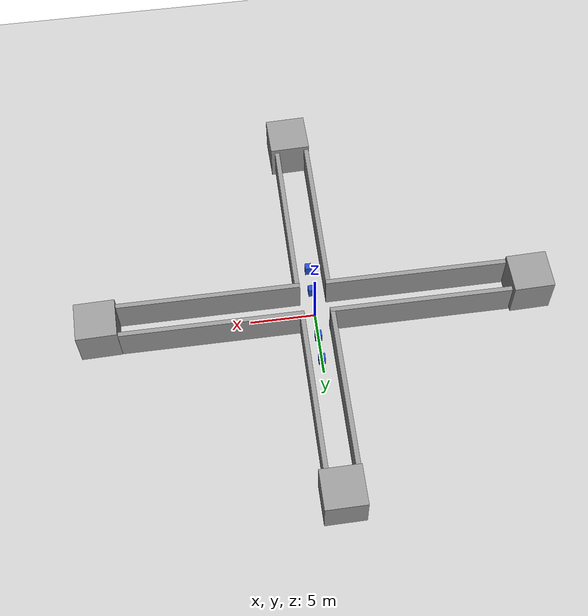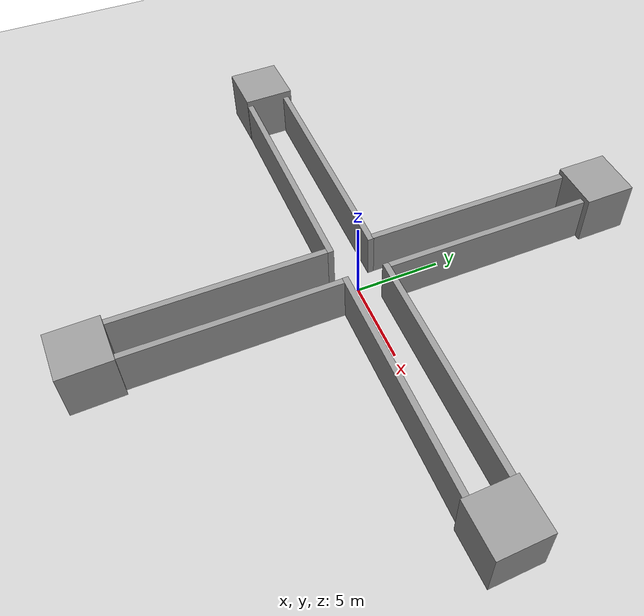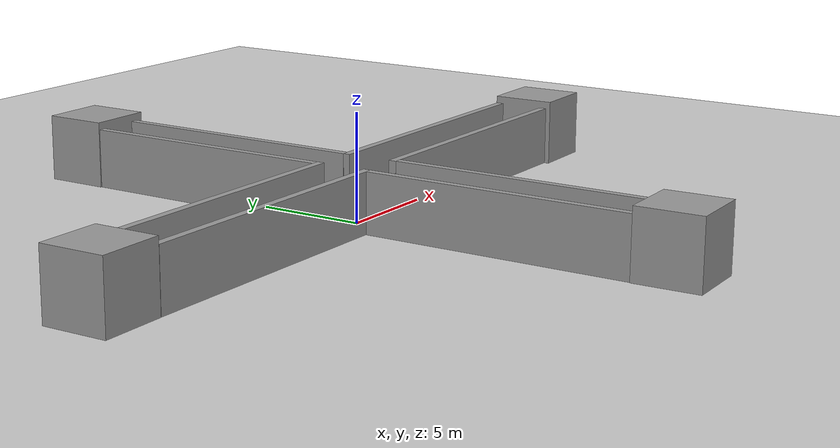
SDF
<sdf version="1.6">
 <world name="default">
  <include><uri>model://sun</uri></include>
  <include><uri>model://ground_plane</uri></include>
  <physics name="default_physics" default="0" type="ode">
   <max_step_size>0.01</max_step_size>
   <real_time_factor>1</real_time_factor>
   <real_time_update_rate>100</real_time_update_rate>
  </physics>
  <model name="my_obstacle_0">
   <pose>0 2 0.2 0 -0 0</pose>
   <link name="s_link">
    <inertial>
     <mass>1</mass>
     <inertia><ixx>1</ixx><ixy>0</ixy><ixz>0</ixz><iyy>1</iyy><iyz>0</iyz><izz>1</izz></inertia>
    </inertial>
    <collision name="collision"><geometry><box><size>.5 .5 1.2</size></box></geometry></collision>
    <visual name="visual">
     <geometry><box><size>.5 .5 1.2</size></box></geometry>
     <material>
      <script><name>Gazebo/Blue</name><uri>file://media/materials/scripts/gazebo.material</uri></script>
     </material>
    </visual>
    <kinematic>1</kinematic>
   </link>
  </model>
  <model name="my_obstacle_1">
   <pose>0 4 0.2 0 -0 0</pose>
   <link name="s_link">
    <inertial>
     <mass>1</mass>
     <inertia><ixx>1</ixx><ixy>0</ixy><ixz>0</ixz><iyy>1</iyy><iyz>0</iyz><izz>1</izz></inertia>
    </inertial>
    <collision name="collision"><geometry><box><size>.5 .5 1.2</size></box></geometry></collision>
    <visual name="visual">
     <geometry><box><size>.5 .5 1.2</size></box></geometry>
     <material>
      <script><name>Gazebo/Blue</name><uri>file://media/materials/scripts/gazebo.material</uri></script>
     </material>
    </visual>
    <kinematic>1</kinematic>
   </link>
  </model>
  <model name="my_obstacle_2">
   <pose>0 -2 0.2 0 -0 0</pose>
   <link name="s_link">
    <inertial>
     <mass>1</mass>
     <inertia><ixx>1</ixx><ixy>0</ixy><ixz>0</ixz><iyy>1</iyy><iyz>0</iyz><izz>1</izz></inertia>
    </inertial>
    <collision name="collision"><geometry><box><size>.5 .5 1.2</size></box></geometry></collision>
    <visual name="visual">
     <geometry><box><size>.5 .5 1.2</size></box></geometry>
     <material>
      <script><name>Gazebo/Blue</name><uri>file://media/materials/scripts/gazebo.material</uri></script>
     </material>
    </visual>
    <kinematic>1</kinematic>
   </link>
  </model>
  <model name="my_obstacle_3">
   <pose>0 -4 0.2 0 -0 0</pose>
   <link name="s_link">
    <inertial>
     <mass>1</mass>
     <inertia><ixx>1</ixx><ixy>0</ixy><ixz>0</ixz><iyy>1</iyy><iyz>0</iyz><izz>1</izz></inertia>
    </inertial>
    <collision name="collision"><geometry><box><size>.5 .5 1.2</size></box></geometry></collision>
    <visual name="visual">
     <geometry><box><size>.5 .5 1.2</size></box></geometry>
     <material>
      <script><name>Gazebo/Blue</name><uri>file://media/materials/scripts/gazebo.material</uri></script>
     </material>
    </visual>
    <kinematic>1</kinematic>
   </link>
  </model>
  <model name="grey_wall_1">
   <link name="link">
    <pose>2.925 1.28466 1.4 0 -0 0</pose>
    <inertial>
     <inertia><ixx>0</ixx><ixy>0</ixy><ixz>0</ixz><iyy>0</iyy><iyz>0</iyz><izz>0</izz></inertia>
     <mass>0</mass>
    </inertial>
    <visual name="visual">
     <cast_shadows>0</cast_shadows>
     <geometry><box><size>13.9044 0.356904 2.8</size></box></geometry>
     <material>
      <script>
       <uri>model://grey_wall/materials/scripts</uri>
       <uri>model://grey_wall/materials/textures</uri>
       <name>vrc/grey_wall</name>
      </script>
      <shader type="pixel"/>
      <ambient>1 1 1 1</ambient>
      <diffuse>1 1 1 1</diffuse>
      <specular>0 0 0 1</specular>
      <emissive>0 0 0 1</emissive>
     </material>
    </visual>
    <collision name="collision">
     <geometry><box><size>13.9044 0.356904 2.8</size></box></geometry>
     <surface>
      <friction>
       <ode><mu>1</mu><mu2>1</mu2><fdir1>0 0 0</fdir1><slip1>0</slip1><slip2>0</slip2></ode>
       <torsional>
        <coefficient>1</coefficient>
        <patch_radius>0</patch_radius>
        <surface_radius>0</surface_radius>
        <use_patch_radius>1</use_patch_radius>
        <ode><slip>0</slip></ode>
       </torsional>
      </friction>
      <bounce><restitution_coefficient>0</restitution_coefficient><threshold>1e+06</threshold></bounce>
      <contact>
       <collide_without_contact>0</collide_without_contact>
       <collide_without_contact_bitmask>1</collide_without_contact_bitmask>
       <collide_bitmask>1</collide_bitmask>
       <ode>
        <soft_cfm>0</soft_cfm>
        <soft_erp>0.2</soft_erp>
        <kp>1e+13</kp>
        <kd>1</kd>
        <max_vel>0.01</max_vel>
        <min_depth>0</min_depth>
       </ode>
       <bullet>
        <split_impulse>1</split_impulse>
        <split_impulse_penetration_threshold>-0.01</split_impulse_penetration_threshold>
        <soft_cfm>0</soft_cfm>
        <soft_erp>0.2</soft_erp>
        <kp>1e+13</kp>
        <kd>1</kd>
       </bullet>
      </contact>
     </surface>
    </collision>
   </link>
   <static>1</static>
   <pose>5.03021 -2.48853 0 0 -0 0</pose>
  </model>
  <model name="grey_wall_2">
   <link name="link">
    <pose>2.925 1.28466 1.4 0 -0 0</pose>
    <inertial>
     <inertia><ixx>0</ixx><ixy>0</ixy><ixz>0</ixz><iyy>0</iyy><iyz>0</iyz><izz>0</izz></inertia>
     <mass>0</mass>
    </inertial>
    <visual name="visual">
     <cast_shadows>0</cast_shadows>
     <geometry><box><size>13.9044 0.356904 2.8</size></box></geometry>
     <material>
      <script>
       <uri>model://grey_wall/materials/scripts</uri>
       <uri>model://grey_wall/materials/textures</uri>
       <name>vrc/grey_wall</name>
      </script>
      <shader type="pixel"/>
      <ambient>1 1 1 1</ambient>
      <diffuse>1 1 1 1</diffuse>
      <specular>0 0 0 1</specular>
      <emissive>0 0 0 1</emissive>
     </material>
    </visual>
    <collision name="collision">
     <geometry><box><size>13.9044 0.356904 2.8</size></box></geometry>
     <surface>
      <friction>
       <ode><mu>1</mu><mu2>1</mu2><fdir1>0 0 0</fdir1><slip1>0</slip1><slip2>0</slip2></ode>
       <torsional>
        <coefficient>1</coefficient>
        <patch_radius>0</patch_radius>
        <surface_radius>0</surface_radius>
        <use_patch_radius>1</use_patch_radius>
        <ode><slip>0</slip></ode>
       </torsional>
      </friction>
      <bounce><restitution_coefficient>0</restitution_coefficient><threshold>1e+06</threshold></bounce>
      <contact>
       <collide_without_contact>0</collide_without_contact>
       <collide_without_contact_bitmask>1</collide_without_contact_bitmask>
       <collide_bitmask>1</collide_bitmask>
       <ode>
        <soft_cfm>0</soft_cfm>
        <soft_erp>0.2</soft_erp>
        <kp>1e+13</kp>
        <kd>1</kd>
        <max_vel>0.01</max_vel>
        <min_depth>0</min_depth>
       </ode>
       <bullet>
        <split_impulse>1</split_impulse>
        <split_impulse_penetration_threshold>-0.01</split_impulse_penetration_threshold>
        <soft_cfm>0</soft_cfm>
        <soft_erp>0.2</soft_erp>
        <kp>1e+13</kp>
        <kd>1</kd>
       </bullet>
      </contact>
     </surface>
    </collision>
   </link>
   <static>1</static>
   <pose>-10.8681 -2.5042 0 0 -0 0</pose>
  </model>
  <model name="grey_wall_3">
   <link name="link">
    <pose>2.925 1.28466 1.4 0 -0 0</pose>
    <inertial>
     <inertia><ixx>0</ixx><ixy>0</ixy><ixz>0</ixz><iyy>0</iyy><iyz>0</iyz><izz>0</izz></inertia>
     <mass>0</mass>
    </inertial>
    <visual name="visual">
     <cast_shadows>0</cast_shadows>
     <geometry><box><size>13.9044 0.356904 2.8</size></box></geometry>
     <material>
      <script>
       <uri>model://grey_wall/materials/scripts</uri>
       <uri>model://grey_wall/materials/textures</uri>
       <name>vrc/grey_wall</name>
      </script>
      <shader type="pixel"/>
      <ambient>1 1 1 1</ambient>
      <diffuse>1 1 1 1</diffuse>
      <specular>0 0 0 1</specular>
      <emissive>0 0 0 1</emissive>
     </material>
    </visual>
    <collision name="collision">
     <geometry><box><size>13.9044 0.356904 2.8</size></box></geometry>
     <surface>
      <friction>
       <ode><mu>1</mu><mu2>1</mu2><fdir1>0 0 0</fdir1><slip1>0</slip1><slip2>0</slip2></ode>
       <torsional>
        <coefficient>1</coefficient>
        <patch_radius>0</patch_radius>
        <surface_radius>0</surface_radius>
        <use_patch_radius>1</use_patch_radius>
        <ode><slip>0</slip></ode>
       </torsional>
      </friction>
      <bounce><restitution_coefficient>0</restitution_coefficient><threshold>1e+06</threshold></bounce>
      <contact>
       <collide_without_contact>0</collide_without_contact>
       <collide_without_contact_bitmask>1</collide_without_contact_bitmask>
       <collide_bitmask>1</collide_bitmask>
       <ode>
        <soft_cfm>0</soft_cfm>
        <soft_erp>0.2</soft_erp>
        <kp>1e+13</kp>
        <kd>1</kd>
        <max_vel>0.01</max_vel>
        <min_depth>0</min_depth>
       </ode>
       <bullet>
        <split_impulse>1</split_impulse>
        <split_impulse_penetration_threshold>-0.01</split_impulse_penetration_threshold>
        <soft_cfm>0</soft_cfm>
        <soft_erp>0.2</soft_erp>
        <kp>1e+13</kp>
        <kd>1</kd>
       </bullet>
      </contact>
     </surface>
    </collision>
   </link>
   <static>1</static>
   <pose>4.97794 -0.0688 0 0 -0 0</pose>
  </model>
  <model name="grey_wall_4">
   <link name="link">
    <pose>2.925 1.28466 1.4 0 -0 0</pose>
    <inertial>
     <inertia><ixx>0</ixx><ixy>0</ixy><ixz>0</ixz><iyy>0</iyy><iyz>0</iyz><izz>0</izz></inertia>
     <mass>0</mass>
    </inertial>
    <visual name="visual">
     <cast_shadows>0</cast_shadows>
     <geometry><box><size>13.9044 0.356904 2.8</size></box></geometry>
     <material>
      <script>
       <uri>model://grey_wall/materials/scripts</uri>
       <uri>model://grey_wall/materials/textures</uri>
       <name>vrc/grey_wall</name>
      </script>
      <shader type="pixel"/>
      <ambient>1 1 1 1</ambient>
      <diffuse>1 1 1 1</diffuse>
      <specular>0 0 0 1</specular>
      <emissive>0 0 0 1</emissive>
     </material>
    </visual>
    <collision name="collision">
     <geometry><box><size>13.9044 0.356904 2.8</size></box></geometry>
     <surface>
      <friction>
       <ode><mu>1</mu><mu2>1</mu2><fdir1>0 0 0</fdir1><slip1>0</slip1><slip2>0</slip2></ode>
       <torsional>
        <coefficient>1</coefficient>
        <patch_radius>0</patch_radius>
        <surface_radius>0</surface_radius>
        <use_patch_radius>1</use_patch_radius>
        <ode><slip>0</slip></ode>
       </torsional>
      </friction>
      <bounce><restitution_coefficient>0</restitution_coefficient><threshold>1e+06</threshold></bounce>
      <contact>
       <collide_without_contact>0</collide_without_contact>
       <collide_without_contact_bitmask>1</collide_without_contact_bitmask>
       <collide_bitmask>1</collide_bitmask>
       <ode>
        <soft_cfm>0</soft_cfm>
        <soft_erp>0.2</soft_erp>
        <kp>1e+13</kp>
        <kd>1</kd>
        <max_vel>0.01</max_vel>
        <min_depth>0</min_depth>
       </ode>
       <bullet>
        <split_impulse>1</split_impulse>
        <split_impulse_penetration_threshold>-0.01</split_impulse_penetration_threshold>
        <soft_cfm>0</soft_cfm>
        <soft_erp>0.2</soft_erp>
        <kp>1e+13</kp>
        <kd>1</kd>
       </bullet>
      </contact>
     </surface>
    </collision>
   </link>
   <static>1</static>
   <pose>-10.8648 -0.0744 0 0 -0 0</pose>
  </model>
  <model name="grey_wall_5">
   <link name="link">
    <pose>-0.256169 -0.757738 1.4 0 0 -0.003253</pose>
    <inertial>
     <inertia><ixx>0</ixx><ixy>0</ixy><ixz>0</ixz><iyy>0</iyy><iyz>0</iyz><izz>0</izz></inertia>
     <mass>0</mass>
    </inertial>
    <visual name="visual">
     <cast_shadows>0</cast_shadows>
     <geometry><box><size>12.442 0.356904 2.8</size></box></geometry>
     <material>
      <script>
       <uri>model://grey_wall/materials/scripts</uri>
       <uri>model://grey_wall/materials/textures</uri>
       <name>vrc/grey_wall</name>
      </script>
      <shader type="pixel"/>
      <ambient>1 1 1 1</ambient>
      <diffuse>1 1 1 1</diffuse>
      <specular>0 0 0 1</specular>
      <emissive>0 0 0 1</emissive>
     </material>
    </visual>
    <collision name="collision">
     <geometry><box><size>12.442 0.356904 2.8</size></box></geometry>
     <surface>
      <friction>
       <ode><mu>1</mu><mu2>1</mu2><fdir1>0 0 0</fdir1><slip1>0</slip1><slip2>0</slip2></ode>
       <torsional>
        <coefficient>1</coefficient>
        <patch_radius>0</patch_radius>
        <surface_radius>0</surface_radius>
        <use_patch_radius>1</use_patch_radius>
        <ode><slip>0</slip></ode>
       </torsional>
      </friction>
      <bounce><restitution_coefficient>0</restitution_coefficient><threshold>1e+06</threshold></bounce>
      <contact>
       <collide_without_contact>0</collide_without_contact>
       <collide_without_contact_bitmask>1</collide_without_contact_bitmask>
       <collide_bitmask>1</collide_bitmask>
       <ode>
        <soft_cfm>0</soft_cfm>
        <soft_erp>0.2</soft_erp>
        <kp>1e+13</kp>
        <kd>1</kd>
        <max_vel>0.01</max_vel>
        <min_depth>0</min_depth>
       </ode>
       <bullet>
        <split_impulse>1</split_impulse>
        <split_impulse_penetration_threshold>-0.01</split_impulse_penetration_threshold>
        <soft_cfm>0</soft_cfm>
        <soft_erp>0.2</soft_erp>
        <kp>1e+13</kp>
        <kd>1</kd>
       </bullet>
      </contact>
     </surface>
    </collision>
   </link>
   <static>1</static>
   <pose>1.856 7.32972 0 0 0 -1.56451</pose>
  </model>
  <model name="grey_wall_6">
   <link name="link">
    <pose>-0.256169 -0.757738 1.4 0 0 -0.003253</pose>
    <inertial>
     <inertia><ixx>0</ixx><ixy>0</ixy><ixz>0</ixz><iyy>0</iyy><iyz>0</iyz><izz>0</izz></inertia>
     <mass>0</mass>
    </inertial>
    <visual name="visual">
     <cast_shadows>0</cast_shadows>
     <geometry><box><size>12.442 0.356904 2.8</size></box></geometry>
     <material>
      <script>
       <uri>model://grey_wall/materials/scripts</uri>
       <uri>model://grey_wall/materials/textures</uri>
       <name>vrc/grey_wall</name>
      </script>
      <shader type="pixel"/>
      <ambient>1 1 1 1</ambient>
      <diffuse>1 1 1 1</diffuse>
      <specular>0 0 0 1</specular>
      <emissive>0 0 0 1</emissive>
     </material>
    </visual>
    <collision name="collision">
     <geometry><box><size>12.442 0.356904 2.8</size></box></geometry>
     <surface>
      <friction>
       <ode><mu>1</mu><mu2>1</mu2><fdir1>0 0 0</fdir1><slip1>0</slip1><slip2>0</slip2></ode>
       <torsional>
        <coefficient>1</coefficient>
        <patch_radius>0</patch_radius>
        <surface_radius>0</surface_radius>
        <use_patch_radius>1</use_patch_radius>
        <ode><slip>0</slip></ode>
       </torsional>
      </friction>
      <bounce><restitution_coefficient>0</restitution_coefficient><threshold>1e+06</threshold></bounce>
      <contact>
       <collide_without_contact>0</collide_without_contact>
       <collide_without_contact_bitmask>1</collide_without_contact_bitmask>
       <collide_bitmask>1</collide_bitmask>
       <ode>
        <soft_cfm>0</soft_cfm>
        <soft_erp>0.2</soft_erp>
        <kp>1e+13</kp>
        <kd>1</kd>
        <max_vel>0.01</max_vel>
        <min_depth>0</min_depth>
       </ode>
       <bullet>
        <split_impulse>1</split_impulse>
        <split_impulse_penetration_threshold>-0.01</split_impulse_penetration_threshold>
        <soft_cfm>0</soft_cfm>
        <soft_erp>0.2</soft_erp>
        <kp>1e+13</kp>
        <kd>1</kd>
       </bullet>
      </contact>
     </surface>
    </collision>
   </link>
   <static>1</static>
   <pose>-0.439756 7.31293 0 0 0 -1.56451</pose>
  </model>
  <model name="grey_wall_7">
   <link name="link">
    <pose>-0.256169 -0.757738 1.4 0 0 -0.003253</pose>
    <inertial>
     <inertia><ixx>0</ixx><ixy>0</ixy><ixz>0</ixz><iyy>0</iyy><iyz>0</iyz><izz>0</izz></inertia>
     <mass>0</mass>
    </inertial>
    <visual name="visual">
     <cast_shadows>0</cast_shadows>
     <geometry><box><size>12.442 0.356904 2.8</size></box></geometry>
     <material>
      <script>
       <uri>model://grey_wall/materials/scripts</uri>
       <uri>model://grey_wall/materials/textures</uri>
       <name>vrc/grey_wall</name>
      </script>
      <shader type="pixel"/>
      <ambient>1 1 1 1</ambient>
      <diffuse>1 1 1 1</diffuse>
      <specular>0 0 0 1</specular>
      <emissive>0 0 0 1</emissive>
     </material>
    </visual>
    <collision name="collision">
     <geometry><box><size>12.442 0.356904 2.8</size></box></geometry>
     <surface>
      <friction>
       <ode><mu>1</mu><mu2>1</mu2><fdir1>0 0 0</fdir1><slip1>0</slip1><slip2>0</slip2></ode>
       <torsional>
        <coefficient>1</coefficient>
        <patch_radius>0</patch_radius>
        <surface_radius>0</surface_radius>
        <use_patch_radius>1</use_patch_radius>
        <ode><slip>0</slip></ode>
       </torsional>
      </friction>
      <bounce><restitution_coefficient>0</restitution_coefficient><threshold>1e+06</threshold></bounce>
      <contact>
       <collide_without_contact>0</collide_without_contact>
       <collide_without_contact_bitmask>1</collide_without_contact_bitmask>
       <collide_bitmask>1</collide_bitmask>
       <ode>
        <soft_cfm>0</soft_cfm>
        <soft_erp>0.2</soft_erp>
        <kp>1e+13</kp>
        <kd>1</kd>
        <max_vel>0.01</max_vel>
        <min_depth>0</min_depth>
       </ode>
       <bullet>
        <split_impulse>1</split_impulse>
        <split_impulse_penetration_threshold>-0.01</split_impulse_penetration_threshold>
        <soft_cfm>0</soft_cfm>
        <soft_erp>0.2</soft_erp>
        <kp>1e+13</kp>
        <kd>1</kd>
       </bullet>
      </contact>
     </surface>
    </collision>
   </link>
   <static>1</static>
   <pose>-0.391426 -7.85397 0 0 0 -1.56451</pose>
  </model>
  <model name="grey_wall_8">
   <link name="link">
    <pose>-0.256169 -0.757738 1.4 0 0 -0.003253</pose>
    <inertial>
     <inertia><ixx>0</ixx><ixy>0</ixy><ixz>0</ixz><iyy>0</iyy><iyz>0</iyz><izz>0</izz></inertia>
     <mass>0</mass>
    </inertial>
    <visual name="visual">
     <cast_shadows>0</cast_shadows>
     <geometry><box><size>12.442 0.356904 2.8</size></box></geometry>
     <material>
      <script>
       <uri>model://grey_wall/materials/scripts</uri>
       <uri>model://grey_wall/materials/textures</uri>
       <name>vrc/grey_wall</name>
      </script>
      <shader type="pixel"/>
      <ambient>1 1 1 1</ambient>
      <diffuse>1 1 1 1</diffuse>
      <specular>0 0 0 1</specular>
      <emissive>0 0 0 1</emissive>
     </material>
    </visual>
    <collision name="collision">
     <geometry><box><size>12.442 0.356904 2.8</size></box></geometry>
     <surface>
      <friction>
       <ode><mu>1</mu><mu2>1</mu2><fdir1>0 0 0</fdir1><slip1>0</slip1><slip2>0</slip2></ode>
       <torsional>
        <coefficient>1</coefficient>
        <patch_radius>0</patch_radius>
        <surface_radius>0</surface_radius>
        <use_patch_radius>1</use_patch_radius>
        <ode><slip>0</slip></ode>
       </torsional>
      </friction>
      <bounce><restitution_coefficient>0</restitution_coefficient><threshold>1e+06</threshold></bounce>
      <contact>
       <collide_without_contact>0</collide_without_contact>
       <collide_without_contact_bitmask>1</collide_without_contact_bitmask>
       <collide_bitmask>1</collide_bitmask>
       <ode>
        <soft_cfm>0</soft_cfm>
        <soft_erp>0.2</soft_erp>
        <kp>1e+13</kp>
        <kd>1</kd>
        <max_vel>0.01</max_vel>
        <min_depth>0</min_depth>
       </ode>
       <bullet>
        <split_impulse>1</split_impulse>
        <split_impulse_penetration_threshold>-0.01</split_impulse_penetration_threshold>
        <soft_cfm>0</soft_cfm>
        <soft_erp>0.2</soft_erp>
        <kp>1e+13</kp>
        <kd>1</kd>
       </bullet>
      </contact>
     </surface>
    </collision>
   </link>
   <static>1</static>
   <pose>1.97268 -7.79304 0 0 0 -1.56451</pose>
  </model>
  <gravity>0 0 -9.8</gravity>
  <magnetic_field>6e-06 2.3e-05 -4.2e-05</magnetic_field>
  <atmosphere type="adiabatic"/>
  <scene><ambient>0.4 0.4 0.4 1</ambient><background>0.7 0.7 0.7 1</background><shadows>1</shadows></scene>
  <spherical_coordinates>
   <surface_model>EARTH_WGS84</surface_model>
   <latitude_deg>0</latitude_deg>
   <longitude_deg>0</longitude_deg>
   <elevation>0</elevation>
   <heading_deg>0</heading_deg>
  </spherical_coordinates>
  <model name="corner_box_0">
   <link name="link_0">
    <pose>0.13055 -1.5933 -1.22723 0 -0 0</pose>
    <inertial>
     <mass>29.1278</mass>
     <inertia><ixx>46.0778</ixx><ixy>0</ixy><ixz>0</ixz><iyy>46.8576</iyy><iyz>0</iyz><izz>45.0127</izz></inertia>
    </inertial>
    <visual name="visual">
     <geometry><box><size>3.07127 3.01852 3.1419</size></box></geometry>
     <material>
      <lighting>1</lighting>
      <script><uri>file://media/materials/scripts/gazebo.material</uri><name>Gazebo/Grey</name></script>
      <shader type="pixel"><normal_map>__default__</normal_map></shader>
      <ambient>0.3 0.3 0.3 1</ambient>
      <diffuse>0.7 0.7 0.7 1</diffuse>
      <specular>0.01 0.01 0.01 1</specular>
      <emissive>0 0 0 1</emissive>
     </material>
    </visual>
    <collision name="collision">
     <geometry><box><size>3.07127 3.01852 3.1419</size></box></geometry>
     <surface>
      <friction>
       <ode><mu>1</mu><mu2>1</mu2><fdir1>0 0 0</fdir1><slip1>0</slip1><slip2>0</slip2></ode>
       <torsional>
        <coefficient>1</coefficient>
        <patch_radius>0</patch_radius>
        <surface_radius>0</surface_radius>
        <use_patch_radius>1</use_patch_radius>
        <ode><slip>0</slip></ode>
       </torsional>
      </friction>
      <bounce><restitution_coefficient>0</restitution_coefficient><threshold>1e+06</threshold></bounce>
      <contact>
       <collide_without_contact>0</collide_without_contact>
       <collide_without_contact_bitmask>1</collide_without_contact_bitmask>
       <collide_bitmask>1</collide_bitmask>
       <ode>
        <soft_cfm>0</soft_cfm>
        <soft_erp>0.2</soft_erp>
        <kp>1e+13</kp>
        <kd>1</kd>
        <max_vel>0.01</max_vel>
        <min_depth>0</min_depth>
       </ode>
       <bullet>
        <split_impulse>1</split_impulse>
        <split_impulse_penetration_threshold>-0.01</split_impulse_penetration_threshold>
        <soft_cfm>0</soft_cfm>
        <soft_erp>0.2</soft_erp>
        <kp>1e+13</kp>
        <kd>1</kd>
       </bullet>
      </contact>
     </surface>
    </collision>
   </link>
   <static>0</static>
   <pose>16.2578 1.52633 2.79818 0 -0 0.021598</pose>
  </model>
  <model name="corner_box_1">
   <link name="link_0">
    <pose>0.13055 -1.5933 -1.22723 0 -0 0</pose>
    <inertial>
     <mass>29.1278</mass>
     <inertia><ixx>46.0778</ixx><ixy>0</ixy><ixz>0</ixz><iyy>46.8576</iyy><iyz>0</iyz><izz>45.0127</izz></inertia>
    </inertial>
    <visual name="visual">
     <geometry><box><size>3.07127 3.01852 3.1419</size></box></geometry>
     <material>
      <lighting>1</lighting>
      <script><uri>file://media/materials/scripts/gazebo.material</uri><name>Gazebo/Grey</name></script>
      <shader type="pixel"><normal_map>__default__</normal_map></shader>
      <ambient>0.3 0.3 0.3 1</ambient>
      <diffuse>0.7 0.7 0.7 1</diffuse>
      <specular>0.01 0.01 0.01 1</specular>
      <emissive>0 0 0 1</emissive>
     </material>
    </visual>
    <collision name="collision">
     <geometry><box><size>3.07127 3.01852 3.1419</size></box></geometry>
     <surface>
      <friction>
       <ode><mu>1</mu><mu2>1</mu2><fdir1>0 0 0</fdir1><slip1>0</slip1><slip2>0</slip2></ode>
       <torsional>
        <coefficient>1</coefficient>
        <patch_radius>0</patch_radius>
        <surface_radius>0</surface_radius>
        <use_patch_radius>1</use_patch_radius>
        <ode><slip>0</slip></ode>
       </torsional>
      </friction>
      <bounce><restitution_coefficient>0</restitution_coefficient><threshold>1e+06</threshold></bounce>
      <contact>
       <collide_without_contact>0</collide_without_contact>
       <collide_without_contact_bitmask>1</collide_without_contact_bitmask>
       <collide_bitmask>1</collide_bitmask>
       <ode>
        <soft_cfm>0</soft_cfm>
        <soft_erp>0.2</soft_erp>
        <kp>1e+13</kp>
        <kd>1</kd>
        <max_vel>0.01</max_vel>
        <min_depth>0</min_depth>
       </ode>
       <bullet>
        <split_impulse>1</split_impulse>
        <split_impulse_penetration_threshold>-0.01</split_impulse_penetration_threshold>
        <soft_cfm>0</soft_cfm>
        <soft_erp>0.2</soft_erp>
        <kp>1e+13</kp>
        <kd>1</kd>
       </bullet>
      </contact>
     </surface>
    </collision>
   </link>
   <static>0</static>
   <pose>-16.6533 1.65871 2.79818 0 -0 0.021598</pose>
  </model>
  <model name="corner_box_3">
   <link name="link_0">
    <pose>0.13055 -1.5933 -1.22723 0 -0 0</pose>
    <inertial>
     <mass>29.1278</mass>
     <inertia><ixx>46.0778</ixx><ixy>0</ixy><ixz>0</ixz><iyy>46.8576</iyy><iyz>0</iyz><izz>45.0127</izz></inertia>
    </inertial>
    <visual name="visual">
     <geometry><box><size>3.07127 3.01852 3.1419</size></box></geometry>
     <material>
      <lighting>1</lighting>
      <script><uri>file://media/materials/scripts/gazebo.material</uri><name>Gazebo/Grey</name></script>
      <shader type="pixel"><normal_map>__default__</normal_map></shader>
      <ambient>0.3 0.3 0.3 1</ambient>
      <diffuse>0.7 0.7 0.7 1</diffuse>
      <specular>0.01 0.01 0.01 1</specular>
      <emissive>0 0 0 1</emissive>
     </material>
    </visual>
    <collision name="collision">
     <geometry><box><size>3.07127 3.01852 3.1419</size></box></geometry>
     <surface>
      <friction>
       <ode><mu>1</mu><mu2>1</mu2><fdir1>0 0 0</fdir1><slip1>0</slip1><slip2>0</slip2></ode>
       <torsional>
        <coefficient>1</coefficient>
        <patch_radius>0</patch_radius>
        <surface_radius>0</surface_radius>
        <use_patch_radius>1</use_patch_radius>
        <ode><slip>0</slip></ode>
       </torsional>
      </friction>
      <bounce><restitution_coefficient>0</restitution_coefficient><threshold>1e+06</threshold></bounce>
      <contact>
       <collide_without_contact>0</collide_without_contact>
       <collide_without_contact_bitmask>1</collide_without_contact_bitmask>
       <collide_bitmask>1</collide_bitmask>
       <ode>
        <soft_cfm>0</soft_cfm>
        <soft_erp>0.2</soft_erp>
        <kp>1e+13</kp>
        <kd>1</kd>
        <max_vel>0.01</max_vel>
        <min_depth>0</min_depth>
       </ode>
       <bullet>
        <split_impulse>1</split_impulse>
        <split_impulse_penetration_threshold>-0.01</split_impulse_penetration_threshold>
        <soft_cfm>0</soft_cfm>
        <soft_erp>0.2</soft_erp>
        <kp>1e+13</kp>
        <kd>1</kd>
       </bullet>
      </contact>
     </surface>
    </collision>
   </link>
   <static>0</static>
   <pose>0.04268 -13.7133 2.79818 0 -0 0.025766</pose>
  </model>
  <model name="corner_box_2">
   <link name="link_0">
    <pose>0.13055 -1.5933 -1.22723 0 -0 0</pose>
    <inertial>
     <mass>29.1278</mass>
     <inertia><ixx>46.0778</ixx><ixy>0</ixy><ixz>0</ixz><iyy>46.8576</iyy><iyz>0</iyz><izz>45.0127</izz></inertia>
    </inertial>
    <visual name="visual">
     <geometry><box><size>3.07127 3.01852 3.1419</size></box></geometry>
     <material>
      <lighting>1</lighting>
      <script><uri>file://media/materials/scripts/gazebo.material</uri><name>Gazebo/Grey</name></script>
      <shader type="pixel"><normal_map>__default__</normal_map></shader>
      <ambient>0.3 0.3 0.3 1</ambient>
      <diffuse>0.7 0.7 0.7 1</diffuse>
      <specular>0.01 0.01 0.01 1</specular>
      <emissive>0 0 0 1</emissive>
     </material>
    </visual>
    <collision name="collision">
     <geometry><box><size>3.07127 3.01852 3.1419</size></box></geometry>
     <surface>
      <friction>
       <ode><mu>1</mu><mu2>1</mu2><fdir1>0 0 0</fdir1><slip1>0</slip1><slip2>0</slip2></ode>
       <torsional>
        <coefficient>1</coefficient>
        <patch_radius>0</patch_radius>
        <surface_radius>0</surface_radius>
        <use_patch_radius>1</use_patch_radius>
        <ode><slip>0</slip></ode>
       </torsional>
      </friction>
      <bounce><restitution_coefficient>0</restitution_coefficient><threshold>1e+06</threshold></bounce>
      <contact>
       <collide_without_contact>0</collide_without_contact>
       <collide_without_contact_bitmask>1</collide_without_contact_bitmask>
       <collide_bitmask>1</collide_bitmask>
       <ode>
        <soft_cfm>0</soft_cfm>
        <soft_erp>0.2</soft_erp>
        <kp>1e+13</kp>
        <kd>1</kd>
        <max_vel>0.01</max_vel>
        <min_depth>0</min_depth>
       </ode>
       <bullet>
        <split_impulse>1</split_impulse>
        <split_impulse_penetration_threshold>-0.01</split_impulse_penetration_threshold>
        <soft_cfm>0</soft_cfm>
        <soft_erp>0.2</soft_erp>
        <kp>1e+13</kp>
        <kd>1</kd>
       </bullet>
      </contact>
     </surface>
    </collision>
   </link>
   <static>0</static>
   <pose>-0.065895 16.8973 2.79818 0 -0 0.007311</pose>
  </model>
 </world>
</sdf>
